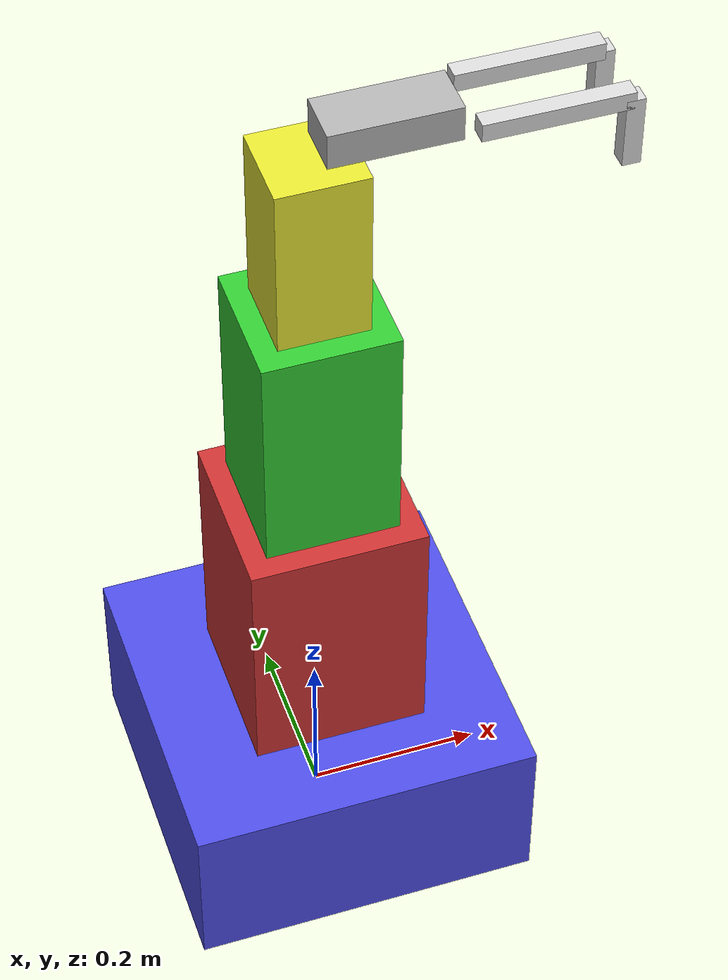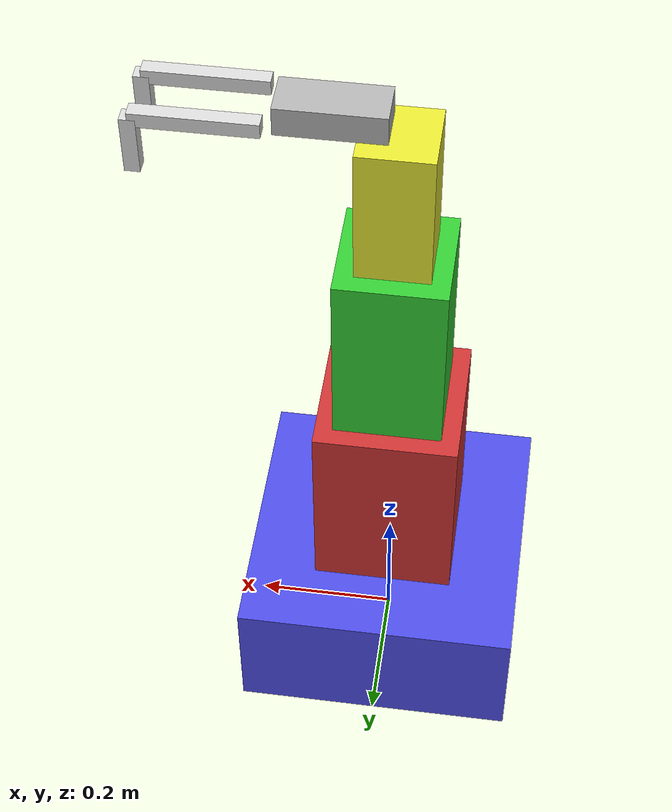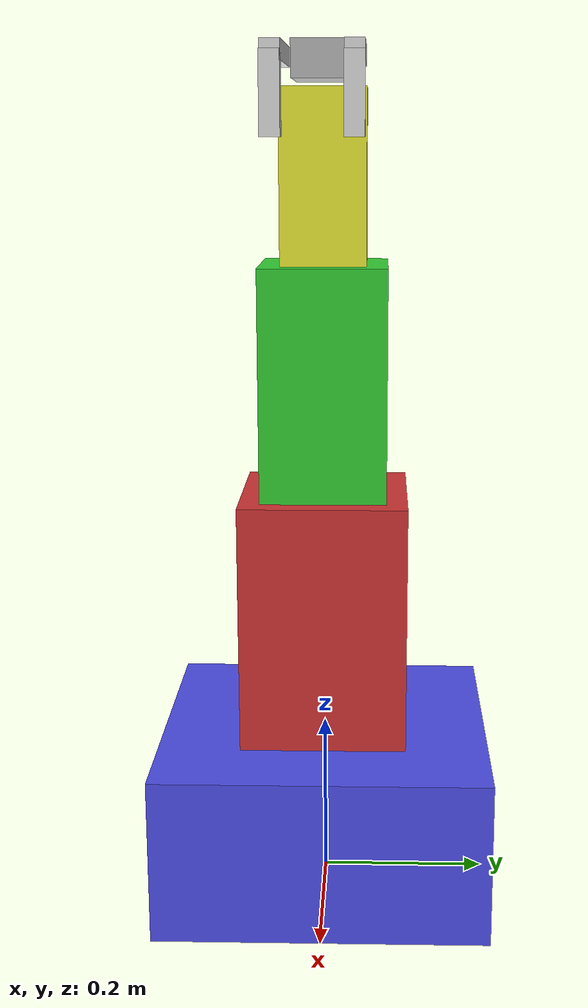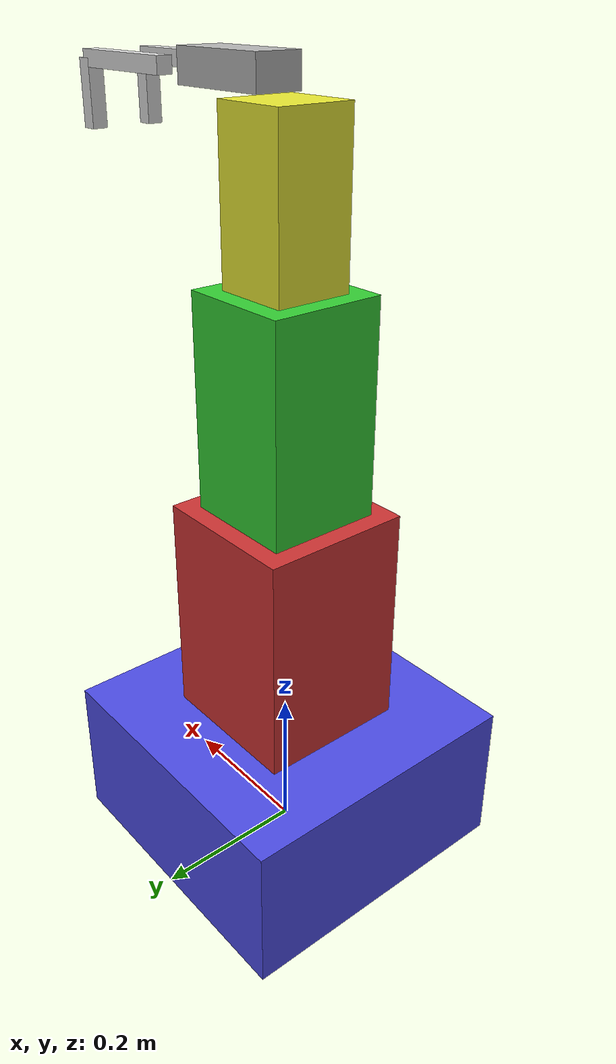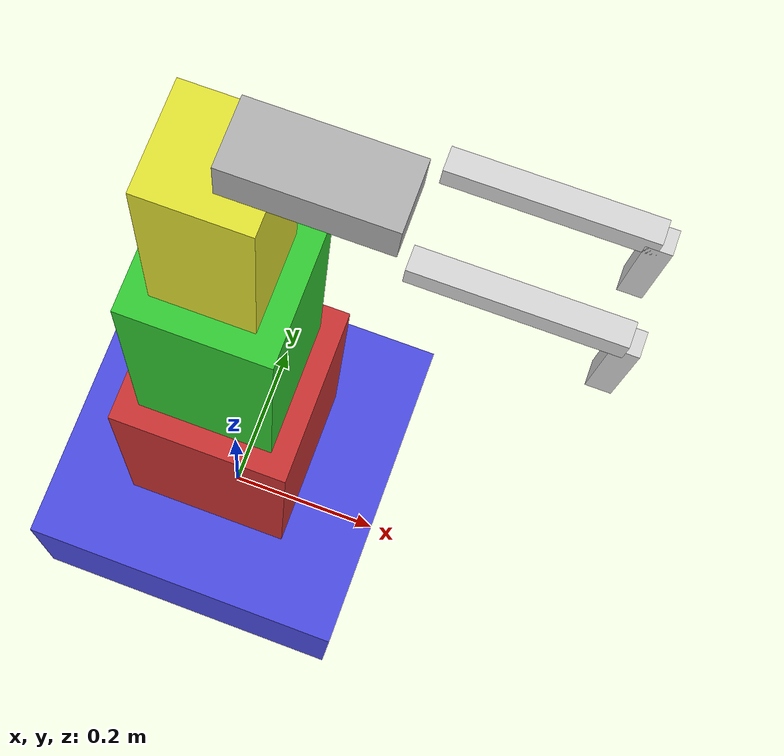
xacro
<?xml version="1.0"?>
<robot xmlns:xacro="http://www.ros.org/wiki/xacro" name="armrobot_simple">

  <xacro:property name="PI" value="3.14159"/>
  <xacro:property name="effort" value="20.0"/>
  <xacro:property name="velocity" value="1.5"/>

  <xacro:macro name="inertial_box" params="mass size_x size_y size_z">
    <inertial>
      <origin xyz="0 0 0" rpy="0 0 0"/>
      <mass value="${mass}"/>
      <inertia
        ixx="${(1.0/12.0)*mass*(size_y*size_y + size_z*size_z)}"
        iyy="${(1.0/12.0)*mass*(size_x*size_x + size_z*size_z)}"
        izz="${(1.0/12.0)*mass*(size_x*size_x + size_y*size_y)}"
        ixy="0.0" ixz="0.0" iyz="0.0"/>
    </inertial>
  </xacro:macro>

  <xacro:macro name="box_link" params="name size_x size_y size_z mass color">
    <link name="${name}">
      <xacro:inertial_box mass="${mass}" size_x="${size_x}" size_y="${size_y}" size_z="${size_z}"/>
      <visual>
        <origin xyz="0 0 0" rpy="0 0 0"/>
        <geometry>
          <box size="${size_x} ${size_y} ${size_z}"/>
        </geometry>
        <material name="${color}">
          <color rgba="${color}"/>
        </material>
      </visual>
      <collision>
        <origin xyz="0 0 0" rpy="0 0 0"/>
        <geometry>
          <box size="${size_x} ${size_y} ${size_z}"/>
        </geometry>
      </collision>
    </link>
  </xacro:macro>

  <link name="world"/>

  <xacro:box_link name="base_link"
                  size_x="0.4" size_y="0.4" size_z="0.2"
                  mass="5.0"
                  color="0.3 0.3 0.9 1.0"/>

  <joint name="world_to_base" type="fixed">
    <parent link="world"/>
    <child link="base_link"/>
    <origin xyz="0 0 0.1" rpy="0 0 0"/>
  </joint>

  <xacro:box_link name="shoulder_link"
                  size_x="0.2" size_y="0.2" size_z="0.4"
                  mass="2.0"
                  color="0.8 0.2 0.2 1.0"/>

  <joint name="joint_1" type="revolute">
    <parent link="base_link"/>
    <child link="shoulder_link"/>
    <origin xyz="0 0 0.2" rpy="0 0 0"/>
    <axis xyz="0 0 1"/>
    <limit lower="-${PI/2}" upper="${PI/2}" effort="${effort}" velocity="${velocity}"/>
  </joint>

  <xacro:box_link name="elbow_link"
                  size_x="0.15" size_y="0.15" size_z="0.35"
                  mass="1.5"
                  color="0.2 0.8 0.2 1.0"/>

  <joint name="joint_2" type="revolute">
    <parent link="shoulder_link"/>
    <child link="elbow_link"/>
    <origin xyz="0 0 0.3" rpy="0 0 0"/>
    <axis xyz="0 1 0"/>
    <limit lower="-${PI/2}" upper="${PI/2}" effort="${effort}" velocity="${velocity}"/>
  </joint>

  <xacro:box_link name="wrist_link"
                  size_x="0.1" size_y="0.1" size_z="0.25"
                  mass="1.0"
                  color="0.9 0.9 0.2 1.0"/>

  <joint name="joint_3" type="revolute">
    <parent link="elbow_link"/>
    <child link="wrist_link"/>
    <origin xyz="0 0 0.25" rpy="0 0 0"/>
    <axis xyz="0 1 0"/>
    <limit lower="-${PI/2}" upper="${PI/2}" effort="${effort}" velocity="${velocity}"/>
  </joint>

  <xacro:box_link name="gripper_palm"
                  size_x="0.14" size_y="0.06" size_z="0.04"
                  mass="0.6"
                  color="0.7 0.7 0.7 1.0"/>

  <joint name="joint_4" type="fixed">
    <parent link="wrist_link"/>
    <child link="gripper_palm"/>
    <origin xyz="0.08 0 0.15" rpy="0 0 0"/>
  </joint>

  <link name="gripper_finger_left">
    <xacro:inertial_box mass="0.2" size_x="0.16" size_y="0.02" size_z="0.08"/>
    <visual>
      <origin xyz="0.08 0 0" rpy="0 0 0"/>
      <geometry>
        <box size="0.16 0.02 0.02"/>
      </geometry>
      <material name="left_finger">
        <color rgba="0.85 0.85 0.85 1.0"/>
      </material>
    </visual>
    <visual>
      <origin xyz="0.16 0 -0.04" rpy="0 0 0"/>
      <geometry>
        <box size="0.02 0.02 0.08"/>
      </geometry>
      <material name="left_finger_tip">
        <color rgba="0.85 0.85 0.85 1.0"/>
      </material>
    </visual>
    <collision>
      <origin xyz="0.08 0 0" rpy="0 0 0"/>
      <geometry>
        <box size="0.16 0.02 0.02"/>
      </geometry>
    </collision>
    <collision>
      <origin xyz="0.16 0 -0.04" rpy="0 0 0"/>
      <geometry>
        <box size="0.02 0.02 0.08"/>
      </geometry>
    </collision>
  </link>

  <joint name="joint_5" type="revolute">
    <parent link="gripper_palm"/>
    <child link="gripper_finger_left"/>
    <origin xyz="0.08 0.04 0.0" rpy="0 0 0"/>
    <axis xyz="0 0 1"/>
    <limit lower="0.0" upper="0.5" effort="5.0" velocity="2.0"/>
  </joint>

  <link name="gripper_finger_right">
    <xacro:inertial_box mass="0.2" size_x="0.16" size_y="0.02" size_z="0.08"/>
    <visual>
      <origin xyz="0.08 0 0" rpy="0 0 0"/>
      <geometry>
        <box size="0.16 0.02 0.02"/>
      </geometry>
      <material name="right_finger">
        <color rgba="0.85 0.85 0.85 1.0"/>
      </material>
    </visual>
    <visual>
      <origin xyz="0.16 0 -0.04" rpy="0 0 0"/>
      <geometry>
        <box size="0.02 0.02 0.08"/>
      </geometry>
      <material name="right_finger_tip">
        <color rgba="0.85 0.85 0.85 1.0"/>
      </material>
    </visual>
    <collision>
      <origin xyz="0.08 0 0" rpy="0 0 0"/>
      <geometry>
        <box size="0.16 0.02 0.02"/>
      </geometry>
    </collision>
    <collision>
      <origin xyz="0.16 0 -0.04" rpy="0 0 0"/>
      <geometry>
        <box size="0.02 0.02 0.08"/>
      </geometry>
    </collision>
  </link>

  <joint name="joint_6" type="revolute">
    <parent link="gripper_palm"/>
    <child link="gripper_finger_right"/>
    <origin xyz="0.08 -0.04 0.0" rpy="0 0 0"/>
    <axis xyz="0 0 1"/>
    <mimic joint="joint_5" multiplier="-1" offset="0.0"/>
    <limit lower="-0.5" upper="0.0" effort="5.0" velocity="2.0"/>
  </joint>

</robot>
